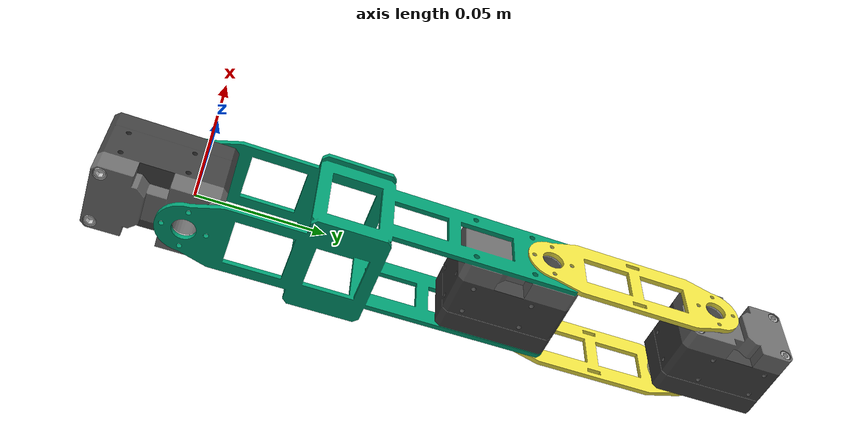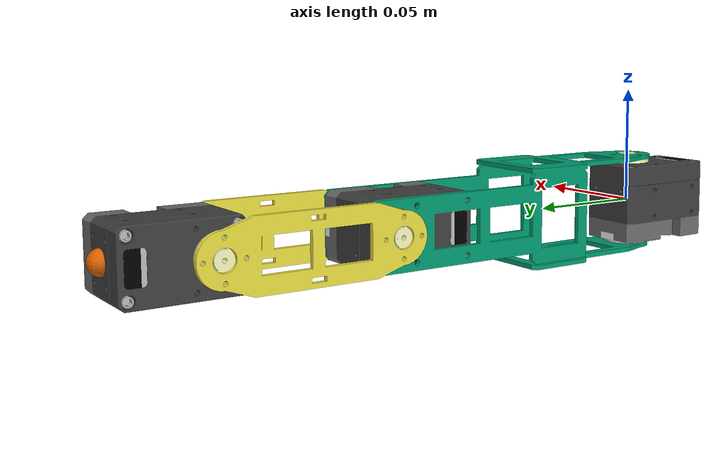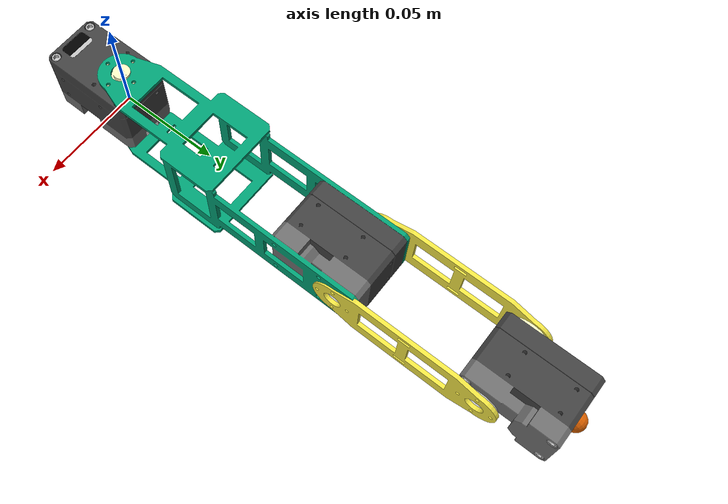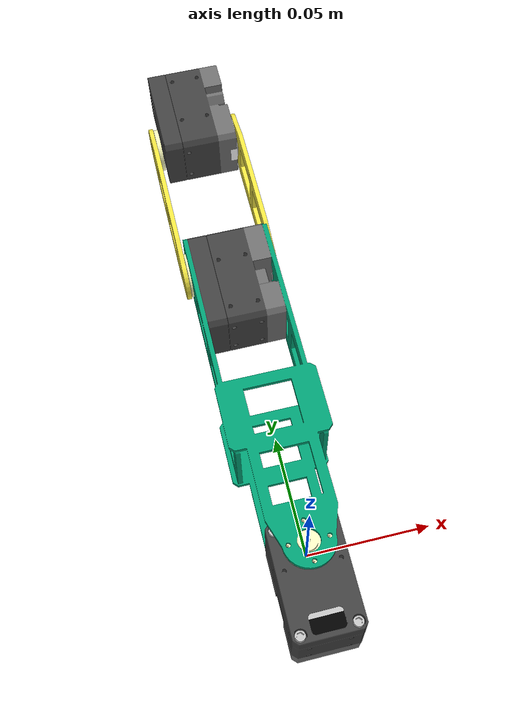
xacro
<?xml version="1.0"?>

<robot name="wp_manipulator_3R" xmlns:xacro="http://ros.org/wiki/xacro">

  <xacro:include filename="$(find aerial_manipulators_description)/urdf/manipulator_base.urdf.xacro" />

  <link name="world"></link>

  <xacro:wp_manipulator_3R
    parent="world">
    <origin xyz="0 0 0" rpy="0 0 0"/>
  </xacro:wp_manipulator_3R>

   <xacro:transmisija
    trans_number="1"
    joint_name="joint1">
  </xacro:transmisija>

  <xacro:transmisija
    trans_number="2"
    joint_name="joint2">
  </xacro:transmisija>

  <xacro:transmisija
    trans_number="3"
    joint_name="joint3">
  </xacro:transmisija>
</robot>

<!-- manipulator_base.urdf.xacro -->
<robot xmlns:xacro="http://ros.org/wiki/xacro">

  <xacro:macro name="wp_manipulator"
  params="parent *origin">

    <xacro:property name="a0" value="0.04526"/>
    <xacro:property name="a1" value="0.122490"/>
    <xacro:property name="a2" value="0.1365"/>
    <xacro:property name="a3" value="0.075511"/>
    <xacro:property name="a4" value="0.072489"/>
    <xacro:property name="d5" value="0.04526"/>
    <xacro:property name="theta1" value="${pi/2}"/>
    <xacro:property name="alpha2" value="${-pi/2}"/>

    <xacro:property name="mass2" value="0.03"/>
    <xacro:property name="mass1" value="${mass2*a1/a2}"/>
    <xacro:property name="mass3" value="${mass2*a3/a2}"/>
    <xacro:property name="mass4" value="${mass2*a4/a2}"/>
    <xacro:property name="mass5" value="${mass2*d5/a2}"/>

    <xacro:property name="rad" value="0.03"/>

    <link name='base'>
      <inertial>
        <mass value="${mass5}" />
        <origin xyz="0 -${a0/2} 0" rpy="0 0 0"/>
        <inertia
          ixx="${1/2 * mass5 * rad * rad}" ixy="0" ixz="0"
          iyx="0" iyy="${1/12 * mass5 * (3*rad*rad + a0*a0)}" iyz="0"
          izx="0" izy="0" izz="${1/12 * mass5 * (3*rad*rad + a0*a0)}"/>
      </inertial>

      <visual>
        <origin xyz="0 0 0" rpy="0 0 0" />
        <geometry>
          <mesh filename="package://aerial_manipulators_description/meshes/wp_manipulator/base.dae"
            scale="1 1 1" />
        </geometry>
      </visual>
    </link>

    <link name='link1'>
      <inertial>
        <mass value="${mass1}" />
        <origin xyz="0 ${a1/2} 0" rpy="0 0 0"/>
        <inertia
          ixx="${1/12 * mass1 * (3*rad*rad + a1*a1)}" ixy="0" ixz="0"
          iyx="0" iyy="${1/2 * mass1 * rad * rad}" iyz="0"
          izx="0" izy="0" izz="${1/12 * mass1 * (3*rad*rad + a1*a1)}"/>
      </inertial>

      <visual>
        <origin xyz="0 0 0" rpy="0 0 0" />
        <geometry>
          <mesh filename="package://aerial_manipulators_description/meshes/wp_manipulator/link1.dae"
            scale="1 1 1" />
        </geometry>
      </visual>
    </link>

    <link name='link2'>
      <inertial>
        <mass value="${mass2}" />
        <origin xyz="${a2/2} 0 0" rpy="0 0 0"/>
        <inertia
          ixx="${1/2 * mass2 * rad * rad}" ixy="0" ixz="0"
          iyx="0" iyy="${1/12 * mass2 * (3*rad*rad + a2*a2)}" iyz="0"
          izx="0" izy="0" izz="${1/12 * mass2 * (3*rad*rad + a2*a2)}"/>
      </inertial>

      <visual>
        <origin xyz="0 0 0" rpy="0 0 -${pi / 2}" />
        <geometry>
          <mesh filename="package://aerial_manipulators_description/meshes/wp_manipulator/link2.dae"
            scale="1 1 1" />
        </geometry>
      </visual>
    </link>

    <link name='link3'>
      <inertial>
        <mass value="${mass3}" />
        <origin xyz="${a3/2} 0 0" rpy="0 0 0"/>
        <inertia
          ixx="${1/2 * mass3 * rad * rad}" ixy="0" ixz="0"
          iyx="0" iyy="${1/12 * mass3 * (3*rad*rad + a3*a3)}" iyz="0"
          izx="0" izy="0" izz="${1/12 * mass3 * (3*rad*rad + a3*a3)}"/>
      </inertial>

      <visual>
        <origin xyz="0 0 0" rpy="0 ${pi / 2} ${-pi / 2}" />
        <geometry>
          <mesh filename="package://aerial_manipulators_description/meshes/wp_manipulator/link3.dae"
            scale="1 1 1" />
        </geometry>
      </visual>
    </link>

    <link name='link4'>
      <inertial>
        <mass value="${mass4}" />
        <origin xyz="${a4/2} 0 0" rpy="0 0 0"/>
        <inertia
          ixx="${1/2 * mass4 * rad * rad}" ixy="0" ixz="0"
          iyx="0" iyy="${1/12 * mass4 * (3*rad*rad + a4*a4)}" iyz="0"
          izx="0" izy="0" izz="${1/12 * mass4 * (3*rad*rad + a4*a4)}"/>
      </inertial>

      <visual>
        <origin xyz="0 0 0" rpy="0 ${pi / 2} -${pi / 2}" />
        <geometry>
          <mesh filename="package://aerial_manipulators_description/meshes/wp_manipulator/link4.dae"
            scale="1 1 1" />
        </geometry>
      </visual>
    </link>

    <link name='link5'>
      <inertial>
        <mass value="${mass5}" />
        <origin xyz="${d5/2} 0 0" rpy="0 0 0"/>
        <inertia
          ixx="${1/2 * mass5 * rad * rad}" ixy="0" ixz="0"
          iyx="0" iyy="${1/12 * mass5 * (3*rad*rad + d5*d5)}" iyz="0"
          izx="0" izy="0" izz="${1/12 * mass5 * (3*rad*rad + d5*d5)}"/>
      </inertial>

      <visual>
        <origin xyz="0 0 0" rpy="0 ${pi / 2} 0" />
        <geometry>
          <mesh filename="package://aerial_manipulators_description/meshes/wp_manipulator/link5.dae"
            scale="1 1 1" />
        </geometry>
      </visual>
    </link>

    <link name='end_effector_base'>
      <inertial>
        <mass value="0.00001" />
        <origin xyz="0 0 0" rpy="0 0 0"/>
        <inertia
          ixx="0.00001" ixy="0" ixz="0"
          iyx="0" iyy="0.00001" iyz="0"
          izx="0" izy="0" izz="0.00001"/>
      </inertial>

      <visual>
        <geometry>
          <sphere radius="0.005"/>
        </geometry>
      </visual>
    </link>

    <joint name="wp_base_joint" type="fixed">
      <parent link="${parent}"/>
      <child link="base"/>
      <xacro:insert_block name="origin"/>
    </joint>

    <joint name="joint1" type="revolute">
      <parent link="base"/>
      <child link="link1"/>
      <!-- Adjust Gazebo coordinate system to link1 coordinate system -->
      <origin xyz="0 0 0" rpy="0 0 0"/>
      <limit upper="1.57" lower="-1.57" effort="10000000" velocity="46"/>
      <axis xyz="0 0 1" />
    </joint>

    <joint name="joint2" type="revolute">
      <parent link="link1"/>
      <child link="link2"/>
      <origin xyz="0 ${a1} 0" rpy="0 0 ${theta1}"/>
      <limit upper="2.0" lower="-2.0" effort="10000000" velocity="46"/>
      <axis xyz="0 0 1" />
    </joint>

    <joint name="joint3" type="revolute">
      <parent link="link2"/>
      <child link="link3"/>
      <origin xyz="${a2} 0 0" rpy="${alpha2} 0 0"/>
      <limit upper="1.57" lower="-1.57" effort="10000000" velocity="46"/>
      <axis xyz="0 0 1" />
    </joint>

    <joint name="joint4" type="revolute">
      <parent link="link3"/>
      <child link="link4"/>
      <origin xyz="${a3} 0 0" rpy="0 0 0"/>
      <limit upper="2.0" lower="-2.0" effort="10000000" velocity="46"/>
      <axis xyz="0 0 1" />
    </joint>

    <joint name="joint5" type="revolute">
      <parent link="link4"/>
      <child link="link5"/>
      <origin xyz="${a4} 0 0" rpy="0 0 0"/>
      <limit upper="2.3" lower="-2.3" effort="10000000" velocity="46"/>
      <axis xyz="0 0 1" />
    </joint>

    <joint name="jointEndEffectorBase" type="fixed">
      <parent link="link5"/>
      <child link="end_effector_base"/>
      <origin xyz="${d5} 0 0" rpy="0 0 0"/>
    </joint>

  </xacro:macro>

  <xacro:macro name="wp_manipulator_3R"
  params="parent *origin">

    <xacro:property name="a0" value="0.04526"/>
    <xacro:property name="a1" value="0.122490"/>
    <xacro:property name="a2" value="0.1365"/>
    <xacro:property name="a3" value="0.075511"/>
    <xacro:property name="a4" value="0.072489"/>
    <xacro:property name="d5" value="0.035"/>
    <xacro:property name="theta1" value="${pi/2}"/>
    <xacro:property name="alpha2" value="${-pi/2}"/>

    <xacro:property name="mass2" value="0.03"/>
    <xacro:property name="mass1" value="${mass2*a1/a2}"/>
    <xacro:property name="mass3" value="${mass2*a3/a2}"/>
    <xacro:property name="mass4" value="${mass2*a4/a2}"/>
    <xacro:property name="mass5" value="${mass2*d5/a2}"/>

    <xacro:property name="rad" value="0.03"/>

    <link name='base'>
      <inertial>
        <mass value="${mass5}" />
        <origin xyz="0 -${a0/2} 0" rpy="0 0 0"/>
        <inertia
          ixx="${1/2 * mass5 * rad * rad}" ixy="0" ixz="0"
          iyx="0" iyy="${1/12 * mass5 * (3*rad*rad + a0*a0)}" iyz="0"
          izx="0" izy="0" izz="${1/12 * mass5 * (3*rad*rad + a0*a0)}"/>
      </inertial>

      <visual>
        <origin xyz="0 0 0" rpy="0 0 0" />
        <geometry>
          <mesh filename="package://aerial_manipulators_description/meshes/wp_manipulator/base.dae"
            scale="1 1 1" />
        </geometry>
      </visual>
    </link>

    <link name='link1'>
      <inertial>
        <mass value="${mass2}" />
        <origin xyz="${a2/2} 0 0" rpy="0 0 0"/>
        <inertia
          ixx="${1/2 * mass2 * rad * rad}" ixy="0" ixz="0"
          iyx="0" iyy="${1/12 * mass2 * (3*rad*rad + a2*a2)}" iyz="0"
          izx="0" izy="0" izz="${1/12 * mass2 * (3*rad*rad + a2*a2)}"/>
      </inertial>

      <visual>
        <origin xyz="0 0 0" rpy="0 0 0" />
        <geometry>
          <mesh filename="package://aerial_manipulators_description/meshes/wp_manipulator/link2_rotated.dae"
            scale="1 1 1" />
        </geometry>
      </visual>
    </link>

    <link name='link2'>
      <inertial>
        <mass value="${mass4}" />
        <origin xyz="${a4/2} 0 0" rpy="0 0 0"/>
        <inertia
          ixx="${1/2 * mass4 * rad * rad}" ixy="0" ixz="0"
          iyx="0" iyy="${1/12 * mass4 * (3*rad*rad + a4*a4)}" iyz="0"
          izx="0" izy="0" izz="${1/12 * mass4 * (3*rad*rad + a4*a4)}"/>
      </inertial>

      <visual>
        <origin xyz="0 0 0" rpy="0 ${pi/2} ${-pi/2}" />
        <geometry>
          <mesh filename="package://aerial_manipulators_description/meshes/wp_manipulator/link4.dae"
            scale="1 1 1" />
        </geometry>
      </visual>
    </link>

    <link name='link3'>
      <inertial>
        <mass value="${mass5}" />
        <origin xyz="${a0/2} 0 0" rpy="0 0 0"/>
        <inertia
          ixx="${1/2 * mass5 * rad * rad}" ixy="0" ixz="0"
          iyx="0" iyy="${1/12 * mass5 * (3*rad*rad + a0*a0)}" iyz="0"
          izx="0" izy="0" izz="${1/12 * mass5 * (3*rad*rad + a0*a0)}"/>
      </inertial>

      <visual>
        <origin xyz="0 0 0" rpy="0 ${pi / 2} 0" />
        <geometry>
          <mesh filename="package://aerial_manipulators_description/meshes/wp_manipulator/link5.dae"
            scale="1 1 1" />
        </geometry>
      </visual>
    </link>

    <link name='end_effector_base'>
      <inertial>
        <mass value="0.00001" />
        <origin xyz="0 0 0" rpy="0 0 0"/>
        <inertia
          ixx="0.00001" ixy="0" ixz="0"
          iyx="0" iyy="0.00001" iyz="0"
          izx="0" izy="0" izz="0.00001"/>
      </inertial>

      <visual>
        <geometry>
          <sphere radius="0.005"/>
        </geometry>
      </visual>
    </link>

    <joint name="wp_base_joint" type="fixed">
      <parent link="${parent}"/>
      <child link="base"/>
      <xacro:insert_block name="origin"/>
    </joint>

    <joint name="joint1" type="revolute">
      <parent link="base"/>
      <child link="link1"/>
      <!-- Adjust Gazebo coordinate system to link1 coordinate system -->
      <origin xyz="0 0 0" rpy="0 0 0"/>
      <limit upper="1.57" lower="-1.57" effort="10000000" velocity="46"/>
      <axis xyz="0 0 1" />
    </joint>

    <joint name="joint2" type="revolute">
      <parent link="link1"/>
      <child link="link2"/>
      <origin xyz="0 ${a2} 0" rpy="${-pi/2} 0 ${pi/2}"/>
      <limit upper="2.0" lower="-2.0" effort="10000000" velocity="46"/>
      <axis xyz="0 0 1" />
    </joint>

    <joint name="joint3" type="revolute">
      <parent link="link2"/>
      <child link="link3"/>
      <origin xyz="${a4} 0 0" rpy="0 0 0"/>
      <limit upper="2.0" lower="-2.0" effort="10000000" velocity="46"/>
      <axis xyz="0 0 1" />
    </joint>

    <joint name="jointEndEffectorBase" type="fixed">
      <parent link="link3"/>
      <child link="end_effector_base"/>
      <origin xyz="${d5} 0 0" rpy="0 0 0"/>
    </joint>

  </xacro:macro>

  <xacro:macro name="transmisija" params="trans_number joint_name">
    <transmission name="transmission_${trans_number}">
      <type>transmission_interface/SimpleTransmission</type>
      <joint name="${joint_name}">
        <hardwareInterface>hardware_interface/EffortJointInterface</hardwareInterface>
      </joint>
      <actuator name="motor_${trans_number}">
        <hardwareInterface>hardware_interface/EffortActuatorInterface</hardwareInterface>
        <mechanicalReduction>1</mechanicalReduction>
      </actuator>
    </transmission>
  </xacro:macro>

</robot>
